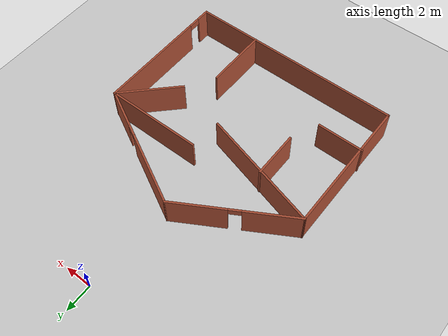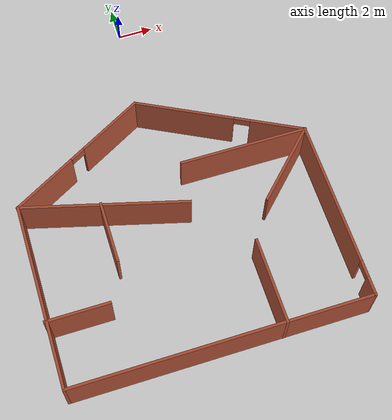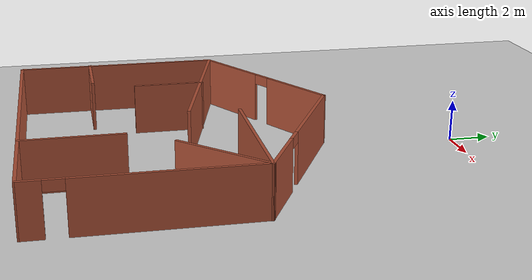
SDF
<sdf version="1.7">
 <world name="default">
  <model name="ground_plane">
   <static>1</static>
   <link name="link">
    <collision name="collision">
     <geometry><plane><normal>0 0 1</normal><size>100 100</size></plane></geometry>
     <surface>
      <contact><collide_bitmask>65535</collide_bitmask></contact>
      <friction><ode><mu>100</mu><mu2>50</mu2></ode></friction>
     </surface>
    </collision>
    <visual name="visual">
     <cast_shadows>0</cast_shadows>
     <geometry><plane><normal>0 0 1</normal><size>100 100</size></plane></geometry>
     <material>
      <script><uri>file://media/materials/scripts/gazebo.material</uri><name>Gazebo/Grey</name></script>
     </material>
    </visual>
   </link>
  </model>
  <gravity>0 0 -9.8</gravity>
  <magnetic_field>6e-06 2.3e-05 -4.2e-05</magnetic_field>
  <atmosphere type="adiabatic"/>
  <physics type="ode">
   <max_step_size>0.001</max_step_size>
   <real_time_factor>1</real_time_factor>
   <real_time_update_rate>1000</real_time_update_rate>
  </physics>
  <scene><ambient>0.4 0.4 0.4 1</ambient><background>0.7 0.7 0.7 1</background><shadows>1</shadows></scene>
  <spherical_coordinates>
   <surface_model>EARTH_WGS84</surface_model>
   <latitude_deg>0</latitude_deg>
   <longitude_deg>0</longitude_deg>
   <elevation>0</elevation>
   <heading_deg>0</heading_deg>
  </spherical_coordinates>
  <model name="map2">
   <pose>-0.367728 -10.5331 0 0 -0 0</pose>
   <link name="Wall_46">
    <collision name="Wall_46_Collision">
     <geometry><box><size>10.25 0.15 2.5</size></box></geometry>
     <pose>0 0 1.25 0 -0 0</pose>
    </collision>
    <visual name="Wall_46_Visual">
     <pose>0 0 1.25 0 -0 0</pose>
     <geometry><box><size>10.25 0.15 2.5</size></box></geometry>
     <material>
      <script><uri>file://media/materials/scripts/gazebo.material</uri><name>Gazebo/Bricks</name></script>
      <ambient>1 1 1 1</ambient>
     </material>
     <meta><layer>0</layer></meta>
    </visual>
    <pose>-8.04971 -5.39951 0 0 -0 -1.5708</pose>
   </link>
   <link name="Wall_47">
    <collision name="Wall_47_Collision">
     <geometry><box><size>16.25 0.15 2.5</size></box></geometry>
     <pose>0 0 1.25 0 -0 0</pose>
    </collision>
    <visual name="Wall_47_Visual">
     <pose>0 0 1.25 0 -0 0</pose>
     <geometry><box><size>16.25 0.15 2.5</size></box></geometry>
     <material>
      <script><uri>file://media/materials/scripts/gazebo.material</uri><name>Gazebo/Bricks</name></script>
      <ambient>1 1 1 1</ambient>
     </material>
     <meta><layer>0</layer></meta>
    </visual>
    <pose>0.000292 -10.4495 0 0 -0 0</pose>
   </link>
   <link name="Wall_48">
    <pose>8.07689 -5.39951 0 0 -0 1.56553</pose>
    <visual name="Wall_48_Visual_0">
     <pose>-4.58408 0 1.25 0 -0 0</pose>
     <geometry><box><size>1.08184 0.15 2.5</size></box></geometry>
     <material>
      <script><uri>file://media/materials/scripts/gazebo.material</uri><name>Gazebo/Bricks</name></script>
      <ambient>1 1 1 1</ambient>
     </material>
     <meta><layer>0</layer></meta>
    </visual>
    <collision name="Wall_48_Collision_0">
     <geometry><box><size>1.08184 0.15 2.5</size></box></geometry>
     <pose>-4.58408 0 1.25 0 -0 0</pose>
    </collision>
    <visual name="Wall_48_Visual_1">
     <pose>0.990921 0 1.25 0 -0 0</pose>
     <geometry><box><size>8.26816 0.15 2.5</size></box></geometry>
     <material>
      <script><uri>file://media/materials/scripts/gazebo.material</uri><name>Gazebo/Bricks</name></script>
      <ambient>1 1 1 1</ambient>
     </material>
     <meta><layer>0</layer></meta>
    </visual>
    <collision name="Wall_48_Collision_1">
     <geometry><box><size>8.26816 0.15 2.5</size></box></geometry>
     <pose>0.990921 0 1.25 0 -0 0</pose>
    </collision>
    <visual name="Wall_48_Visual_2">
     <pose>-3.59316 0 2.25 0 -0 0</pose>
     <geometry><box><size>0.9 0.15 0.5</size></box></geometry>
     <material>
      <script><uri>file://media/materials/scripts/gazebo.material</uri><name>Gazebo/Bricks</name></script>
      <ambient>1 1 1 1</ambient>
     </material>
     <meta><layer>0</layer></meta>
    </visual>
    <collision name="Wall_48_Collision_2">
     <geometry><box><size>0.9 0.15 0.5</size></box></geometry>
     <pose>-3.59316 0 2.25 0 -0 0</pose>
    </collision>
   </link>
   <link name="Wall_51">
    <pose>-4.21755 1.86299 0 0 -0 0.523599</pose>
    <visual name="Wall_51_Visual_0">
     <pose>-2.50044 0 1.25 0 -0 0</pose>
     <geometry><box><size>3.99913 0.15 2.5</size></box></geometry>
     <material>
      <script><uri>file://media/materials/scripts/gazebo.material</uri><name>Gazebo/Bricks</name></script>
      <ambient>1 1 1 1</ambient>
     </material>
     <meta><layer>0</layer></meta>
    </visual>
    <collision name="Wall_51_Collision_0">
     <geometry><box><size>3.99913 0.15 2.5</size></box></geometry>
     <pose>-2.50044 0 1.25 0 -0 0</pose>
    </collision>
    <visual name="Wall_51_Visual_1">
     <pose>2.44956 0 1.25 0 -0 0</pose>
     <geometry><box><size>4.10087 0.15 2.5</size></box></geometry>
     <material>
      <script><uri>file://media/materials/scripts/gazebo.material</uri><name>Gazebo/Bricks</name></script>
      <ambient>1 1 1 1</ambient>
     </material>
     <meta><layer>0</layer></meta>
    </visual>
    <collision name="Wall_51_Collision_1">
     <geometry><box><size>4.10087 0.15 2.5</size></box></geometry>
     <pose>2.44956 0 1.25 0 -0 0</pose>
    </collision>
    <visual name="Wall_51_Visual_2">
     <pose>-0.050871 0 2.25 0 -0 0</pose>
     <geometry><box><size>0.9 0.15 0.5</size></box></geometry>
     <material>
      <script><uri>file://media/materials/scripts/gazebo.material</uri><name>Gazebo/Bricks</name></script>
      <ambient>1 1 1 1</ambient>
     </material>
     <meta><layer>0</layer></meta>
    </visual>
    <collision name="Wall_51_Collision_2">
     <geometry><box><size>0.9 0.15 0.5</size></box></geometry>
     <pose>-0.050871 0 2.25 0 -0 0</pose>
    </collision>
   </link>
   <link name="Wall_52">
    <pose>3.85906 1.86299 0 0 -0 -0.480519</pose>
    <visual name="Wall_52_Visual_0">
     <pose>-2.01331 0 1.25 0 -0 0</pose>
     <geometry><box><size>5.69635 0.15 2.5</size></box></geometry>
     <material>
      <script><uri>file://media/materials/scripts/gazebo.material</uri><name>Gazebo/Bricks</name></script>
      <ambient>1 1 1 1</ambient>
     </material>
     <meta><layer>0</layer></meta>
    </visual>
    <collision name="Wall_52_Collision_0">
     <geometry><box><size>5.69635 0.15 2.5</size></box></geometry>
     <pose>-2.01331 0 1.25 0 -0 0</pose>
    </collision>
    <visual name="Wall_52_Visual_1">
     <pose>3.29818 0 1.25 0 -0 0</pose>
     <geometry><box><size>3.12661 0.15 2.5</size></box></geometry>
     <material>
      <script><uri>file://media/materials/scripts/gazebo.material</uri><name>Gazebo/Bricks</name></script>
      <ambient>1 1 1 1</ambient>
     </material>
     <meta><layer>0</layer></meta>
    </visual>
    <collision name="Wall_52_Collision_1">
     <geometry><box><size>3.12661 0.15 2.5</size></box></geometry>
     <pose>3.29818 0 1.25 0 -0 0</pose>
    </collision>
    <visual name="Wall_52_Visual_2">
     <pose>1.28487 0 2.25 0 -0 0</pose>
     <geometry><box><size>0.9 0.15 0.5</size></box></geometry>
     <material>
      <script><uri>file://media/materials/scripts/gazebo.material</uri><name>Gazebo/Bricks</name></script>
      <ambient>1 1 1 1</ambient>
     </material>
     <meta><layer>0</layer></meta>
    </visual>
    <collision name="Wall_52_Collision_2">
     <geometry><box><size>0.9 0.15 0.5</size></box></geometry>
     <pose>1.28487 0 2.25 0 -0 0</pose>
    </collision>
   </link>
   <link name="Wall_54">
    <collision name="Wall_54_Collision">
     <geometry><box><size>9.25 0.15 2.5</size></box></geometry>
     <pose>0 0 1.25 0 -0 0</pose>
    </collision>
    <visual name="Wall_54_Visual">
     <pose>0 0 1.25 0 -0 0</pose>
     <geometry><box><size>9.25 0.15 2.5</size></box></geometry>
     <material>
      <script><uri>file://media/materials/scripts/gazebo.material</uri><name>Gazebo/Bricks</name></script>
      <ambient>1 1 1 1</ambient>
     </material>
     <meta><layer>0</layer></meta>
    </visual>
    <pose>-3.65475 -1.52714 0 0 -0 -0.261799</pose>
   </link>
   <link name="Wall_56">
    <collision name="Wall_56_Collision">
     <geometry><box><size>7.25 0.15 2.5</size></box></geometry>
     <pose>0 0 1.25 0 -0 0</pose>
    </collision>
    <visual name="Wall_56_Visual">
     <pose>0 0 1.25 0 -0 0</pose>
     <geometry><box><size>7.25 0.15 2.5</size></box></geometry>
     <material>
      <script><uri>file://media/materials/scripts/gazebo.material</uri><name>Gazebo/Bricks</name></script>
      <ambient>1 1 1 1</ambient>
     </material>
     <meta><layer>0</layer></meta>
    </visual>
    <pose>4.55349 -0.34951 0 0 -0 3.14159</pose>
   </link>
   <link name="Wall_59">
    <collision name="Wall_59_Collision">
     <geometry><box><size>3.5 0.15 2.5</size></box></geometry>
     <pose>0 0 1.25 0 -0 0</pose>
    </collision>
    <visual name="Wall_59_Visual">
     <pose>0 0 1.25 0 -0 0</pose>
     <geometry><box><size>3.5 0.15 2.5</size></box></geometry>
     <material>
      <script><uri>file://media/materials/scripts/gazebo.material</uri><name>Gazebo/Bricks</name></script>
      <ambient>1 1 1 1</ambient>
     </material>
     <meta><layer>0</layer></meta>
    </visual>
    <pose>-3.82192 -3.10101 0 0 -0 -1.5708</pose>
   </link>
   <link name="Wall_61">
    <collision name="Wall_61_Collision">
     <geometry><box><size>3.5 0.15 2.5</size></box></geometry>
     <pose>0 0 1.25 0 -0 0</pose>
    </collision>
    <visual name="Wall_61_Visual">
     <pose>0 0 1.25 0 -0 0</pose>
     <geometry><box><size>3.5 0.15 2.5</size></box></geometry>
     <material>
      <script><uri>file://media/materials/scripts/gazebo.material</uri><name>Gazebo/Bricks</name></script>
      <ambient>1 1 1 1</ambient>
     </material>
     <meta><layer>0</layer></meta>
    </visual>
    <pose>-6.45956 -6.87784 0 0 -0 0</pose>
   </link>
   <link name="Wall_63">
    <collision name="Wall_63_Collision">
     <geometry><box><size>4.75 0.15 2.5</size></box></geometry>
     <pose>0 0 1.25 0 -0 0</pose>
    </collision>
    <visual name="Wall_63_Visual">
     <pose>0 0 1.25 0 -0 0</pose>
     <geometry><box><size>4.75 0.15 2.5</size></box></geometry>
     <material>
      <script><uri>file://media/materials/scripts/gazebo.material</uri><name>Gazebo/Bricks</name></script>
      <ambient>1 1 1 1</ambient>
     </material>
     <meta><layer>0</layer></meta>
    </visual>
    <pose>3.3387 -8.15815 0 0 -0 1.5708</pose>
   </link>
   <link name="Wall_65">
    <collision name="Wall_65_Collision">
     <geometry><box><size>5 0.15 2.5</size></box></geometry>
     <pose>0 0 1.25 0 -0 0</pose>
    </collision>
    <visual name="Wall_65_Visual">
     <pose>0 0 1.25 0 -0 0</pose>
     <geometry><box><size>5 0.15 2.5</size></box></geometry>
     <material>
      <script><uri>file://media/materials/scripts/gazebo.material</uri><name>Gazebo/Bricks</name></script>
      <ambient>1 1 1 1</ambient>
     </material>
     <meta><layer>0</layer></meta>
    </visual>
    <pose>6.38876 -2.06424 0 0 -0 -2.35619</pose>
   </link>
   <static>1</static>
  </model>
  <light name="user_directional_light_0" type="directional">
   <pose>0.918364 -17.5143 1 0 -0 0</pose>
   <diffuse>0.5 0.5 0.5 1</diffuse>
   <specular>0.1 0.1 0.1 1</specular>
   <direction>0.1 0.1 -0.9</direction>
   <attenuation>
    <range>20</range>
    <constant>0.5</constant>
    <linear>0.01</linear>
    <quadratic>0.001</quadratic>
   </attenuation>
  </light>
  <light name="user_point_light_0" type="point">
   <pose>-6.06087 -19.2039 1 0 -0 0</pose>
   <diffuse>0.5 0.5 0.5 1</diffuse>
   <specular>0.1 0.1 0.1 1</specular>
   <attenuation>
    <range>20</range>
    <constant>0.5</constant>
    <linear>0.01</linear>
    <quadratic>0.001</quadratic>
   </attenuation>
   <cast_shadows>0</cast_shadows>
   <direction>0 0 -1</direction>
  </light>
  <light name="user_spot_light_0" type="spot">
   <pose>-0.134379 0.14494 1 0 -0 0</pose>
   <diffuse>0.5 0.5 0.5 1</diffuse>
   <specular>0.1 0.1 0.1 1</specular>
   <direction>0 0 -1</direction>
   <attenuation>
    <range>20</range>
    <constant>0.5</constant>
    <linear>0.01</linear>
    <quadratic>0.001</quadratic>
   </attenuation>
   <cast_shadows>0</cast_shadows>
   <spot><inner_angle>0.6</inner_angle><outer_angle>1</outer_angle><falloff>1</falloff></spot>
  </light>
  <light name="user_spot_light_3" type="spot">
   <pose>-4.71547 -8.63514 1 0 -0 0</pose>
   <diffuse>0.5 0.5 0.5 1</diffuse>
   <specular>0.1 0.1 0.1 1</specular>
   <direction>0 0 -1</direction>
   <attenuation>
    <range>20</range>
    <constant>0.5</constant>
    <linear>0.01</linear>
    <quadratic>0.001</quadratic>
   </attenuation>
   <cast_shadows>0</cast_shadows>
   <spot><inner_angle>0.6</inner_angle><outer_angle>1</outer_angle><falloff>1</falloff></spot>
  </light>
  <light name="user_spot_light_1" type="spot">
   <pose>4.74734 -9.07237 1 0 -0 0</pose>
   <diffuse>0.5 0.5 0.5 1</diffuse>
   <specular>0.1 0.1 0.1 1</specular>
   <direction>0 0 -1</direction>
   <attenuation>
    <range>20</range>
    <constant>0.5</constant>
    <linear>0.01</linear>
    <quadratic>0.001</quadratic>
   </attenuation>
   <cast_shadows>0</cast_shadows>
   <spot><inner_angle>0.6</inner_angle><outer_angle>1</outer_angle><falloff>1</falloff></spot>
  </light>
 </world>
</sdf>
